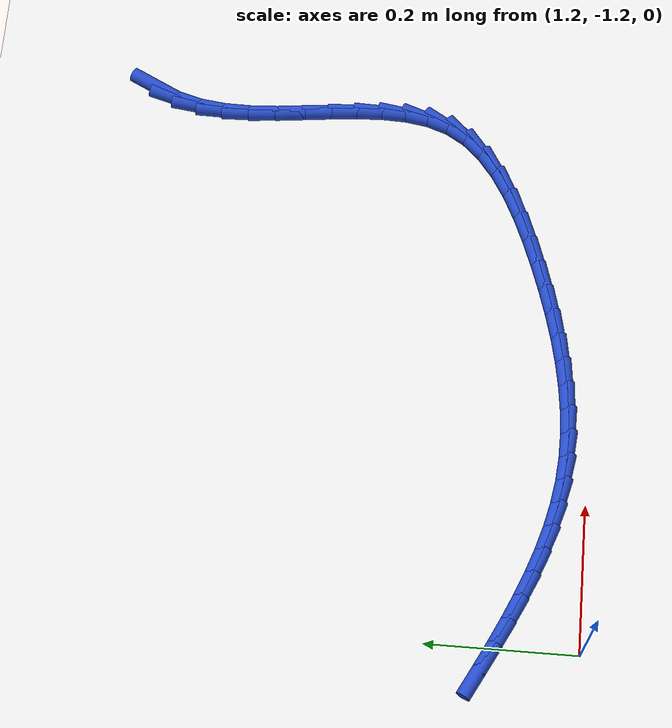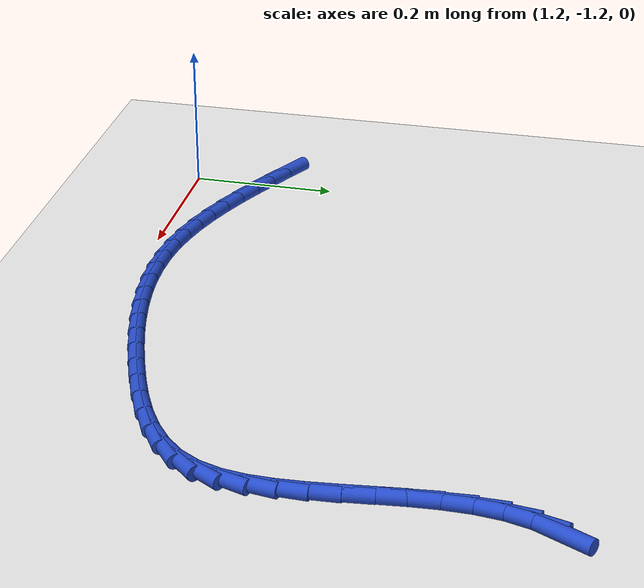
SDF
<sdf version="1.6">
 <world name="default">
  <model name="ground_plane">
   <static>1</static>
   <link name="link">
    <collision name="collision">
     <geometry><plane><normal>0 0 1</normal><size>100 100</size></plane></geometry>
     <surface><friction><ode><mu>100</mu><mu2>50</mu2></ode></friction></surface>
    </collision>
    <visual name="visual">
     <cast_shadows>0</cast_shadows>
     <geometry><plane><normal>0 0 1</normal><size>100 100</size></plane></geometry>
     <material>
      <script><uri>file://media/materials/scripts/gazebo.material</uri><name>Gazebo/WhiteGlow</name></script>
     </material>
    </visual>
   </link>
  </model>
  <model name="line">
   <link name="link_130">
    <pose>1.9639615326003028 -0.5719495903631753 0.01 0 1.57 1.1114632570069942</pose>
    <collision name="collision">
     <geometry><cylinder><radius>0.01</radius><length>0.08</length></cylinder></geometry>
    </collision>
    <visual name="visual">
     <material>
      <script><name>Gazebo/Blue</name><uri>file://media/materials/scripts/gazebo.material</uri></script>
     </material>
     <geometry><cylinder><radius>0.01</radius><length>0.08</length></cylinder></geometry>
    </visual>
   </link>
   <link name="link_131">
    <pose>1.9488112076979007 -0.6025799204046914 0.01 0 1.57 1.2969585834238995</pose>
    <collision name="collision">
     <geometry><cylinder><radius>0.01</radius><length>0.08</length></cylinder></geometry>
    </collision>
    <visual name="visual">
     <material>
      <script><name>Gazebo/Blue</name><uri>file://media/materials/scripts/gazebo.material</uri></script>
     </material>
     <geometry><cylinder><radius>0.01</radius><length>0.08</length></cylinder></geometry>
    </visual>
   </link>
   <link name="link_132">
    <pose>1.9395534626666202 -0.6355380361428586 0.01 0 1.57 1.4459701900615394</pose>
    <collision name="collision">
     <geometry><cylinder><radius>0.01</radius><length>0.08</length></cylinder></geometry>
    </collision>
    <visual name="visual">
     <material>
      <script><name>Gazebo/Blue</name><uri>file://media/materials/scripts/gazebo.material</uri></script>
     </material>
     <geometry><cylinder><radius>0.01</radius><length>0.08</length></cylinder></geometry>
    </visual>
   </link>
   <link name="link_133">
    <pose>1.9351827607889358 -0.6703703043244663 0.01 0 1.57 1.554541997495287</pose>
    <collision name="collision">
     <geometry><cylinder><radius>0.01</radius><length>0.08</length></cylinder></geometry>
    </collision>
    <visual name="visual">
     <material>
      <script><name>Gazebo/Blue</name><uri>file://media/materials/scripts/gazebo.material</uri></script>
     </material>
     <geometry><cylinder><radius>0.01</radius><length>0.08</length></cylinder></geometry>
    </visual>
   </link>
   <link name="link_134">
    <pose>1.934594053136327 -0.7065856285431656 0.01 0 1.57 -1.5145799412952037</pose>
    <collision name="collision">
     <geometry><cylinder><radius>0.01</radius><length>0.08</length></cylinder></geometry>
    </collision>
    <visual name="visual">
     <material>
      <script><name>Gazebo/Blue</name><uri>file://media/materials/scripts/gazebo.material</uri></script>
     </material>
     <geometry><cylinder><radius>0.01</radius><length>0.08</length></cylinder></geometry>
    </visual>
   </link>
   <link name="link_135">
    <pose>1.9366822907802723 -0.7436929123926078 0.01 0 1.57 -1.473521932578797</pose>
    <collision name="collision">
     <geometry><cylinder><radius>0.01</radius><length>0.08</length></cylinder></geometry>
    </collision>
    <visual name="visual">
     <material>
      <script><name>Gazebo/Blue</name><uri>file://media/materials/scripts/gazebo.material</uri></script>
     </material>
     <geometry><cylinder><radius>0.01</radius><length>0.08</length></cylinder></geometry>
    </visual>
   </link>
   <link name="link_136">
    <pose>1.9403424247922525 -0.7812010594664428 0.01 0 1.57 -1.4609460586440375</pose>
    <collision name="collision">
     <geometry><cylinder><radius>0.01</radius><length>0.08</length></cylinder></geometry>
    </collision>
    <visual name="visual">
     <material>
      <script><name>Gazebo/Blue</name><uri>file://media/materials/scripts/gazebo.material</uri></script>
     </material>
     <geometry><cylinder><radius>0.01</radius><length>0.08</length></cylinder></geometry>
    </visual>
   </link>
   <link name="link_137">
    <pose>1.9444694062437453 -0.8186189733583218 0.01 0 1.57 -1.4763683428803749</pose>
    <collision name="collision">
     <geometry><cylinder><radius>0.01</radius><length>0.08</length></cylinder></geometry>
    </collision>
    <visual name="visual">
     <material>
      <script><name>Gazebo/Blue</name><uri>file://media/materials/scripts/gazebo.material</uri></script>
     </material>
     <geometry><cylinder><radius>0.01</radius><length>0.08</length></cylinder></geometry>
    </visual>
   </link>
   <link name="link_138">
    <pose>1.94795818620623 -0.8554555576618957 0.01 0 1.57 -1.5220283534531027</pose>
    <collision name="collision">
     <geometry><cylinder><radius>0.01</radius><length>0.08</length></cylinder></geometry>
    </collision>
    <visual name="visual">
     <material>
      <script><name>Gazebo/Blue</name><uri>file://media/materials/scripts/gazebo.material</uri></script>
     </material>
     <geometry><cylinder><radius>0.01</radius><length>0.08</length></cylinder></geometry>
    </visual>
   </link>
   <link name="link_139">
    <pose>1.9497037157511863 -0.8912197159708164 0.01 0 1.57 1.5385633629134186</pose>
    <collision name="collision">
     <geometry><cylinder><radius>0.01</radius><length>0.08</length></cylinder></geometry>
    </collision>
    <visual name="visual">
     <material>
      <script><name>Gazebo/Blue</name><uri>file://media/materials/scripts/gazebo.material</uri></script>
     </material>
     <geometry><cylinder><radius>0.01</radius><length>0.08</length></cylinder></geometry>
    </visual>
   </link>
   <link name="link_140">
    <pose>1.948600945950094 -0.925420351878733 0.01 0 1.57 1.414788446408359</pose>
    <collision name="collision">
     <geometry><cylinder><radius>0.01</radius><length>0.08</length></cylinder></geometry>
    </collision>
    <visual name="visual">
     <material>
      <script><name>Gazebo/Blue</name><uri>file://media/materials/scripts/gazebo.material</uri></script>
     </material>
     <geometry><cylinder><radius>0.01</radius><length>0.08</length></cylinder></geometry>
    </visual>
   </link>
   <link name="link_141">
    <pose>1.9435448278744312 -0.9575663689792973 0.01 0 1.57 1.2415319797544084</pose>
    <collision name="collision">
     <geometry><cylinder><radius>0.01</radius><length>0.08</length></cylinder></geometry>
    </collision>
    <visual name="visual">
     <material>
      <script><name>Gazebo/Blue</name><uri>file://media/materials/scripts/gazebo.material</uri></script>
     </material>
     <geometry><cylinder><radius>0.01</radius><length>0.08</length></cylinder></geometry>
    </visual>
   </link>
   <link name="link_142">
    <pose>1.9334303125956778 -0.9871666708661602 0.01 0 1.57 1.0245500532436078</pose>
    <collision name="collision">
     <geometry><cylinder><radius>0.01</radius><length>0.08</length></cylinder></geometry>
    </collision>
    <visual name="visual">
     <material>
      <script><name>Gazebo/Blue</name><uri>file://media/materials/scripts/gazebo.material</uri></script>
     </material>
     <geometry><cylinder><radius>0.01</radius><length>0.08</length></cylinder></geometry>
    </visual>
   </link>
   <link name="link_143">
    <pose>1.9172571745966789 -1.0137693137182513 0.01 0 1.57 0.8206013173652523</pose>
    <collision name="collision">
     <geometry><cylinder><radius>0.01</radius><length>0.08</length></cylinder></geometry>
    </collision>
    <visual name="visual">
     <material>
      <script><name>Gazebo/Blue</name><uri>file://media/materials/scripts/gazebo.material</uri></script>
     </material>
     <geometry><cylinder><radius>0.01</radius><length>0.08</length></cylinder></geometry>
    </visual>
   </link>
   <link name="link_144">
    <pose>1.8952522970417613 -1.037380690994988 0.01 0 1.57 0.6626308744557344</pose>
    <collision name="collision">
     <geometry><cylinder><radius>0.01</radius><length>0.08</length></cylinder></geometry>
    </collision>
    <visual name="visual">
     <material>
      <script><name>Gazebo/Blue</name><uri>file://media/materials/scripts/gazebo.material</uri></script>
     </material>
     <geometry><cylinder><radius>0.01</radius><length>0.08</length></cylinder></geometry>
    </visual>
   </link>
   <link name="link_145">
    <pose>1.8684383185299989 -1.0583044187143138 0.01 0 1.57 0.5450347291547203</pose>
    <collision name="collision">
     <geometry><cylinder><radius>0.01</radius><length>0.08</length></cylinder></geometry>
    </collision>
    <visual name="visual">
     <material>
      <script><name>Gazebo/Blue</name><uri>file://media/materials/scripts/gazebo.material</uri></script>
     </material>
     <geometry><cylinder><radius>0.01</radius><length>0.08</length></cylinder></geometry>
    </visual>
   </link>
   <link name="link_146">
    <pose>1.8378513244207655 -1.0768491353927 0.01 0 1.57 0.45913336944894734</pose>
    <collision name="collision">
     <geometry><cylinder><radius>0.01</radius><length>0.08</length></cylinder></geometry>
    </collision>
    <visual name="visual">
     <material>
      <script><name>Gazebo/Blue</name><uri>file://media/materials/scripts/gazebo.material</uri></script>
     </material>
     <geometry><cylinder><radius>0.01</radius><length>0.08</length></cylinder></geometry>
    </visual>
   </link>
   <link name="link_147">
    <pose>1.8045274000734342 -1.0933234795466178 0.01 0 1.57 0.3976815559204443</pose>
    <collision name="collision">
     <geometry><cylinder><radius>0.01</radius><length>0.08</length></cylinder></geometry>
    </collision>
    <visual name="visual">
     <material>
      <script><name>Gazebo/Blue</name><uri>file://media/materials/scripts/gazebo.material</uri></script>
     </material>
     <geometry><cylinder><radius>0.01</radius><length>0.08</length></cylinder></geometry>
    </visual>
   </link>
   <link name="link_148">
    <pose>1.7695026308473791 -1.108036089692539 0.01 0 1.57 0.3557187854617354</pose>
    <collision name="collision">
     <geometry><cylinder><radius>0.01</radius><length>0.08</length></cylinder></geometry>
    </collision>
    <visual name="visual">
     <material>
      <script><name>Gazebo/Blue</name><uri>file://media/materials/scripts/gazebo.material</uri></script>
     </material>
     <geometry><cylinder><radius>0.01</radius><length>0.08</length></cylinder></geometry>
    </visual>
   </link>
   <link name="link_149">
    <pose>1.733813057440071 -1.1212955839496765 0.01 0 1.57 0.3262994475222101</pose>
    <collision name="collision">
     <geometry><cylinder><radius>0.01</radius><length>0.08</length></cylinder></geometry>
    </collision>
    <visual name="visual">
     <material>
      <script><name>Gazebo/Blue</name><uri>file://media/materials/scripts/gazebo.material</uri></script>
     </material>
     <geometry><cylinder><radius>0.01</radius><length>0.08</length></cylinder></geometry>
    </visual>
   </link>
   <link name="link_150">
    <pose>1.6982891677739216 -1.133316703719244 0.01 0 1.57 0.2947159119635723</pose>
    <collision name="collision">
     <geometry><cylinder><radius>0.01</radius><length>0.08</length></cylinder></geometry>
    </collision>
    <visual name="visual">
     <material>
      <script><name>Gazebo/Blue</name><uri>file://media/materials/scripts/gazebo.material</uri></script>
     </material>
     <geometry><cylinder><radius>0.01</radius><length>0.08</length></cylinder></geometry>
    </visual>
   </link>
   <link name="link_151">
    <pose>1.6630822170614448 -1.1440039822938775 0.01 0 1.57 0.2577349157448349</pose>
    <collision name="collision">
     <geometry><cylinder><radius>0.01</radius><length>0.08</length></cylinder></geometry>
    </collision>
    <visual name="visual">
     <material>
      <script><name>Gazebo/Blue</name><uri>file://media/materials/scripts/gazebo.material</uri></script>
     </material>
     <geometry><cylinder><radius>0.01</radius><length>0.08</length></cylinder></geometry>
    </visual>
   </link>
   <link name="link_152">
    <pose>1.6282033564618326 -1.1531979669232093 0.01 0 1.57 0.2149624500720684</pose>
    <collision name="collision">
     <geometry><cylinder><radius>0.01</radius><length>0.08</length></cylinder></geometry>
    </collision>
    <visual name="visual">
     <material>
      <script><name>Gazebo/Blue</name><uri>file://media/materials/scripts/gazebo.material</uri></script>
     </material>
     <geometry><cylinder><radius>0.01</radius><length>0.08</length></cylinder></geometry>
    </visual>
   </link>
   <link name="link_153">
    <pose>1.5936637371342806 -1.1607392048568723 0.01 0 1.57 0.16602603737726743</pose>
    <collision name="collision">
     <geometry><cylinder><radius>0.01</radius><length>0.08</length></cylinder></geometry>
    </collision>
    <visual name="visual">
     <material>
      <script><name>Gazebo/Blue</name><uri>file://media/materials/scripts/gazebo.material</uri></script>
     </material>
     <geometry><cylinder><radius>0.01</radius><length>0.08</length></cylinder></geometry>
    </visual>
   </link>
   <link name="link_154">
    <pose>1.5594745102379806 -1.1664682433444986 0.01 0 1.57 0.11062086021611817</pose>
    <collision name="collision">
     <geometry><cylinder><radius>0.01</radius><length>0.08</length></cylinder></geometry>
    </collision>
    <visual name="visual">
     <material>
      <script><name>Gazebo/Blue</name><uri>file://media/materials/scripts/gazebo.material</uri></script>
     </material>
     <geometry><cylinder><radius>0.01</radius><length>0.08</length></cylinder></geometry>
    </visual>
   </link>
   <link name="link_155">
    <pose>1.5256468269321266 -1.1702256296357214 0.01 0 1.57 0.04857279116849309</pose>
    <collision name="collision">
     <geometry><cylinder><radius>0.01</radius><length>0.08</length></cylinder></geometry>
    </collision>
    <visual name="visual">
     <material>
      <script><name>Gazebo/Blue</name><uri>file://media/materials/scripts/gazebo.material</uri></script>
     </material>
     <geometry><cylinder><radius>0.01</radius><length>0.08</length></cylinder></geometry>
    </visual>
   </link>
   <link name="link_156">
    <pose>1.4921918383759107 -1.1718519109801733 0.01 0 1.57 -0.020083582999929447</pose>
    <collision name="collision">
     <geometry><cylinder><radius>0.01</radius><length>0.08</length></cylinder></geometry>
    </collision>
    <visual name="visual">
     <material>
      <script><name>Gazebo/Blue</name><uri>file://media/materials/scripts/gazebo.material</uri></script>
     </material>
     <geometry><cylinder><radius>0.01</radius><length>0.08</length></cylinder></geometry>
    </visual>
   </link>
   <link name="link_157">
    <pose>1.4591206957285292 -1.171187634627487 0.01 0 1.57 -0.09487976357627027</pose>
    <collision name="collision">
     <geometry><cylinder><radius>0.01</radius><length>0.08</length></cylinder></geometry>
    </collision>
    <visual name="visual">
     <material>
      <script><name>Gazebo/Blue</name><uri>file://media/materials/scripts/gazebo.material</uri></script>
     </material>
     <geometry><cylinder><radius>0.01</radius><length>0.08</length></cylinder></geometry>
    </visual>
   </link>
   <link name="link_158">
    <pose>1.4264432924086383 -1.1680778731879018 0.01 0 1.57 -0.17005621449619174</pose>
    <collision name="collision">
     <geometry><cylinder><radius>0.01</radius><length>0.08</length></cylinder></geometry>
    </collision>
    <visual name="visual">
     <material>
      <script><name>Gazebo/Blue</name><uri>file://media/materials/scripts/gazebo.material</uri></script>
     </material>
     <geometry><cylinder><radius>0.01</radius><length>0.08</length></cylinder></geometry>
    </visual>
   </link>
   <link name="link_159">
    <pose>1.3941248784222486 -1.1625283266311428 0.01 0 1.57 -0.23824134950577808</pose>
    <collision name="collision">
     <geometry><cylinder><radius>0.01</radius><length>0.08</length></cylinder></geometry>
    </collision>
    <visual name="visual">
     <material>
      <script><name>Gazebo/Blue</name><uri>file://media/materials/scripts/gazebo.material</uri></script>
     </material>
     <geometry><cylinder><radius>0.01</radius><length>0.08</length></cylinder></geometry>
    </visual>
   </link>
   <link name="link_160">
    <pose>1.3620750565345636 -1.1547449141490498 0.01 0 1.57 -0.29824286623539564</pose>
    <collision name="collision">
     <geometry><cylinder><radius>0.01</radius><length>0.08</length></cylinder></geometry>
    </collision>
    <visual name="visual">
     <material>
      <script><name>Gazebo/Blue</name><uri>file://media/materials/scripts/gazebo.material</uri></script>
     </material>
     <geometry><cylinder><radius>0.01</radius><length>0.08</length></cylinder></geometry>
    </visual>
   </link>
   <link name="link_161">
    <pose>1.3301999374607894 -1.144946119357577 0.01 0 1.57 -0.3497187111345425</pose>
    <collision name="collision">
     <geometry><cylinder><radius>0.01</radius><length>0.08</length></cylinder></geometry>
    </collision>
    <visual name="visual">
     <material>
      <script><name>Gazebo/Blue</name><uri>file://media/materials/scripts/gazebo.material</uri></script>
     </material>
     <geometry><cylinder><radius>0.01</radius><length>0.08</length></cylinder></geometry>
    </visual>
   </link>
   <link name="link_162">
    <pose>1.2984056319161306 -1.1333504258726808 0.01 0 1.57 -0.3926738522856078</pose>
    <collision name="collision">
     <geometry><cylinder><radius>0.01</radius><length>0.08</length></cylinder></geometry>
    </collision>
    <visual name="visual">
     <material>
      <script><name>Gazebo/Blue</name><uri>file://media/materials/scripts/gazebo.material</uri></script>
     </material>
     <geometry><cylinder><radius>0.01</radius><length>0.08</length></cylinder></geometry>
    </visual>
   </link>
   <link name="link_163">
    <pose>1.2665982506157925 -1.1201763173103156 0.01 0 1.57 -0.42734188655862326</pose>
    <collision name="collision">
     <geometry><cylinder><radius>0.01</radius><length>0.08</length></cylinder></geometry>
    </collision>
    <visual name="visual">
     <material>
      <script><name>Gazebo/Blue</name><uri>file://media/materials/scripts/gazebo.material</uri></script>
     </material>
     <geometry><cylinder><radius>0.01</radius><length>0.08</length></cylinder></geometry>
    </visual>
   </link>
   <link name="link_164">
    <pose>1.2346839042749795 -1.1056422772864376 0.01 0 1.57 -0.45408383798746393</pose>
    <collision name="collision">
     <geometry><cylinder><radius>0.01</radius><length>0.08</length></cylinder></geometry>
    </collision>
    <visual name="visual">
     <material>
      <script><name>Gazebo/Blue</name><uri>file://media/materials/scripts/gazebo.material</uri></script>
     </material>
     <geometry><cylinder><radius>0.01</radius><length>0.08</length></cylinder></geometry>
    </visual>
   </link>
   <link name="link_165">
    <pose>1.202568703608897 -1.0899667894170015 0.01 0 1.57 -0.4733129425104135</pose>
    <collision name="collision">
     <geometry><cylinder><radius>0.01</radius><length>0.08</length></cylinder></geometry>
    </collision>
    <visual name="visual">
     <material>
      <script><name>Gazebo/Blue</name><uri>file://media/materials/scripts/gazebo.material</uri></script>
     </material>
     <geometry><cylinder><radius>0.01</radius><length>0.08</length></cylinder></geometry>
    </visual>
   </link>
   <link name="link_166">
    <pose>1.170158759332751 -1.0733683373179634 0.01 0 1.57 -0.4854449566346171</pose>
    <collision name="collision">
     <geometry><cylinder><radius>0.01</radius><length>0.08</length></cylinder></geometry>
    </collision>
    <visual name="visual">
     <material>
      <script><name>Gazebo/Blue</name><uri>file://media/materials/scripts/gazebo.material</uri></script>
     </material>
     <geometry><cylinder><radius>0.01</radius><length>0.08</length></cylinder></geometry>
    </visual>
   </link>
  </model>
 </world>
</sdf>
